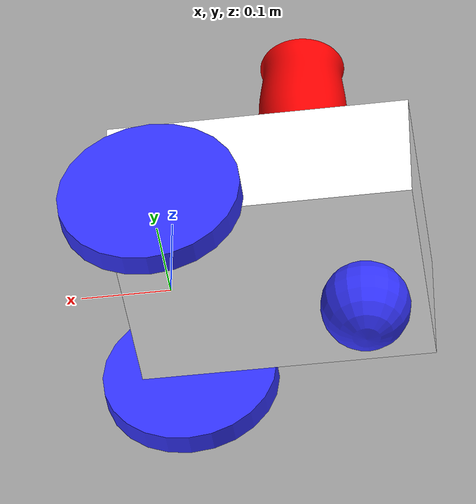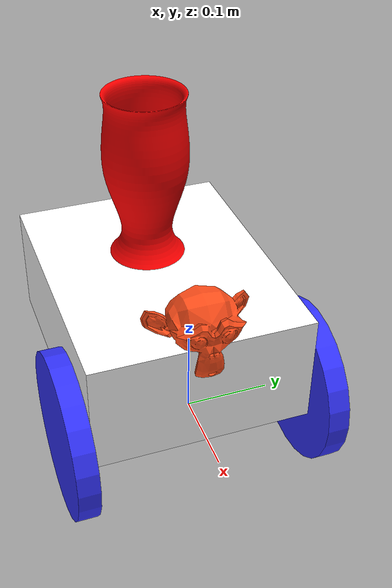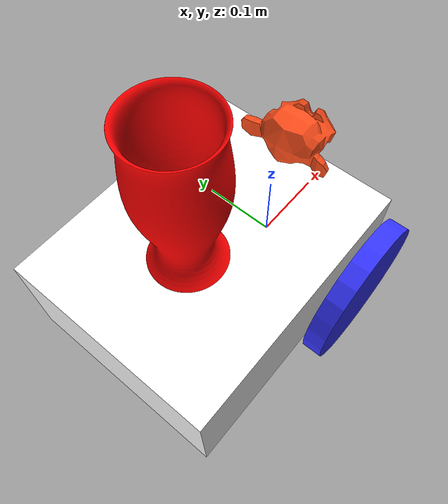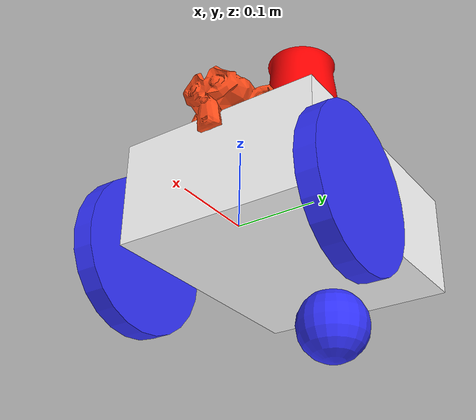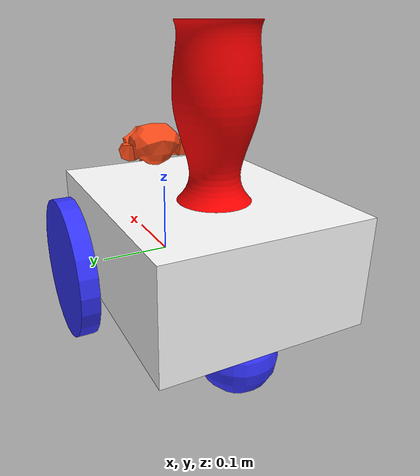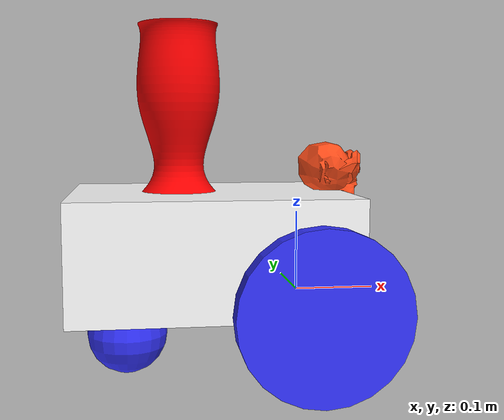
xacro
<?xml version="1.0" ?>
<robot name='robot' xmlns:xacro="http://ros.org/wiki/xacro">

    <xacro:include filename="$(find robot_description)/urdf/gazebo.urdf.xacro" />
    <!--xacro:include filename="$(find robot_description)/urdf/lidar.urdf.xacro" /-->
    <!--xacro:include filename="$(find robot_description)/urdf/depth.urdf.xacro" /-->

    <xacro:property name="chassis_length" value="0.335"/>
    <xacro:property name="chassis_width" value="0.265"/>
    <xacro:property name="chassis_height" value="0.138"/>
    <xacro:property name="wheel_radius" value="0.1"/>
    <xacro:property name="wheel_thickness" value="0.026"/>
    <xacro:property name="wheel_mass" value="0.05"/>
    <xacro:property name="wheel_offset_x" value="0.226"/>
    <xacro:property name="wheel_offset_y" value="0.1485"/>
    <xacro:property name="wheel_offset_z" value="0.01"/>
    <xacro:property name="caster_wheel_radius" value="0.05"/>
    <xacro:property name="caster_wheel_mass" value="0.01"/>
    <xacro:property name="caster_wheel_offset_x" value="0.01"/>
    <xacro:property name="caster_wheel_offset_z" value="${wheel_offset_z - wheel_radius + caster_wheel_radius}"/>
    <xacro:property name="mass" value="1.0"/>

    <material name="white">
        <color rgba="1 1 1 1" />
    </material>

    <material name="orange">
        <color rgba="1 0.3 0.1 1"/>
    </material>

    <material name="blue">
        <color rgba="0.2 0.2 1 1"/>
    </material>

    <material name="black">
        <color rgba="0 0 0 1"/>
    </material>

    <material name="red">
        <color rgba="1 0 0 1"/>
    </material>

    <link name="base_link">
    </link>

    <link name="base_footprint">
    </link>

    <joint name="base_footprint_joint" type="fixed">
        <parent link="base_link"/>
        <child link="base_footprint"/>
        <origin xyz="0 0 -0.138" rpy="0 0 0"/>
    </joint>

    <joint name="chassis_joint" type="fixed">
        <parent link="base_link"/>
        <child link="chassis"/>
        <origin xyz="${-wheel_offset_x} 0 ${-wheel_offset_z}"/>
    </joint>

    <link name='chassis'>

    <inertial>
        <origin xyz="${chassis_length/2} 0 ${chassis_height/2}" rpy="0 0 0"/>
        <mass value="${mass}" />
        <inertia ixx="${(1/12) * mass * (chassis_width*chassis_width+chassis_height*chassis_height)}" ixy="0.0" ixz="0.0"
                 iyy="${(1/12) * mass * (chassis_length*chassis_length+chassis_height*chassis_height)}" iyz="0.0"
                 izz="${(1/12) * mass * (chassis_length*chassis_length+chassis_width*chassis_width)}" />
    </inertial>
    <visual>
        <origin xyz="${chassis_length/3} 0 ${chassis_height/2}"/>
        <geometry>
            <box size="${chassis_length} ${chassis_width} ${chassis_height}"/>
        </geometry>
        <material name="white"/>
    </visual>
    <collision>
        <origin xyz="${chassis_length/2} 0 ${chassis_height/2}"/>
        <geometry>
            <box size="${chassis_length} ${chassis_width} ${chassis_height}"/>
        </geometry>
    </collision>
    </link>

    <gazebo reference="chassis">
        <material>Gazebo/Orange</material>
    </gazebo>

    <joint name="left_wheel_joint" type="continuous">
        <parent link="base_link"/>
        <child link="left_wheel"/>
        <origin xyz="0 ${wheel_offset_y} 0" rpy="-${pi/2} 0 0" />
        <axis xyz="0 0 1"/>
    </joint>

    <link name="left_wheel">
        <visual>
            <geometry>
                <cylinder radius="${wheel_radius}" length="${wheel_thickness}"/>
            </geometry>
            <material name="blue"/>
        </visual>
        <collision>
            <geometry>
                <sphere radius="${wheel_radius}"/>
            </geometry>
        </collision>
        <inertial>
            <origin xyz="0 0 0" rpy="0 0 0"/>
            <mass value="${wheel_mass}" />
            <inertia ixx="${(1/12) * wheel_mass * (3*wheel_radius*wheel_radius + wheel_thickness*wheel_thickness)}" ixy="0.0" ixz="0.0"
                     iyy="${(1/12) * wheel_mass * (3*wheel_radius*wheel_radius + wheel_thickness*wheel_thickness)}" iyz="0.0"
                     izz="${(1/2) * wheel_mass * (wheel_radius*wheel_radius)}" />
        </inertial>
    </link>

    <joint name="right_wheel_joint" type="continuous">
        <parent link="base_link"/>
        <child link="right_wheel"/>
        <origin xyz="0 ${-wheel_offset_y} 0" rpy="${pi/2} 0 0" />
        <axis xyz="0 0 -1"/>
    </joint>

    <link name="right_wheel">
        <visual>
            <geometry>
                <cylinder radius="${wheel_radius}" length="${wheel_thickness}"/>
            </geometry>
            <material name="blue"/>
        </visual>
        <collision>
            <geometry>
                <sphere radius="${wheel_radius}"/>
            </geometry>
        </collision>
        <inertial>
            <origin xyz="0 0 0" rpy="0 0 0"/>
            <mass value="${wheel_mass}" />
            <inertia ixx="${(1/12) * wheel_mass * (3*wheel_radius*wheel_radius + wheel_thickness*wheel_thickness)}" ixy="0.0" ixz="0.0"
                     iyy="${(1/12) * wheel_mass * (3*wheel_radius*wheel_radius + wheel_thickness*wheel_thickness)}" iyz="0.0"
                     izz="${(1/2) * wheel_mass * (wheel_radius*wheel_radius)}" />
        </inertial>
    </link>

    <gazebo reference="right_wheel">
        <material>Gazebo/Blue</material>
    </gazebo>

    <joint name="caster_wheel_joint" type="fixed">
        <parent link="chassis"/>
        <child link="caster_wheel"/>
        <origin xyz="${caster_wheel_offset_x} 0 ${caster_wheel_offset_z}"/>
    </joint>

    <link name="caster_wheel">
        <visual>
            <geometry>
                <sphere radius="${caster_wheel_radius}"/>
            </geometry>
            <material name="blue"/>
        </visual>
        <collision>
            <geometry>
                <sphere radius="${caster_wheel_radius}"/>
            </geometry>
        </collision>
        <inertial>
            <origin xyz="0 0 0" rpy="0 0 0"/>
            <mass value="${caster_wheel_mass}" />
            <inertia ixx="${(2/5) * caster_wheel_mass * (caster_wheel_radius*caster_wheel_radius)}" ixy="0.0" ixz="0.0"
                     iyy="${(2/5) * caster_wheel_mass * (caster_wheel_radius*caster_wheel_radius)}" iyz="0.0"
                     izz="${(2/5) * caster_wheel_mass * (caster_wheel_radius*caster_wheel_radius)}" />
        </inertial>
    </link>

    <gazebo reference="caster_wheel">
        <material>Gazebo/White</material>
        <mu1 value="0.001"/>
        <mu2 value="0.001"/>
    </gazebo>

    <link name="vasa_link">
        <visual>
            <geometry>
                <mesh filename="/home/mar/ros2_ws2/install/unique_robot/share/unique_robot/urdf/vasa.stl"/>
            </geometry>
            <material name="red"/>
        </visual>
    <!-- Остальные параметры звена, такие как инерция, масса и т.д., также могут быть указаны здесь -->
    </link>

    <joint name="base_to_vasa_joint" type="fixed">
        <parent link="base_link"/>
        <child link="vasa_link"/>
        <origin xyz="-0.15 0 ${(chassis_height+wheel_radius)/2}"/>
        <!-- Другие параметры сочленения -->
    </joint>
    <gazebo reference="vasa_link">
        <material>Gazebo/White</material>
        <mu1 value="0.001"/>
        <mu2 value="0.001"/>
    </gazebo>

    <link name="monkey_link">
        <visual>
            <geometry>
                <mesh filename="/home/mar/ros2_ws2/install/unique_robot/share/unique_robot/urdf/monkey.stl"/>
            </geometry>
            <material name="orange"/>
        </visual>
    <!-- Остальные параметры звена, такие как инерция, масса и т.д., также могут быть указаны здесь -->
    </link>

    <joint name="base_to_monkey_joint" type="fixed">
        <parent link="base_link"/>
        <child link="monkey_link"/>
        <origin xyz="0.04 0 ${0.025+(chassis_height+wheel_radius)/2}"/>
        <!-- Другие параметры сочленения -->
    </joint>
    <gazebo reference="monkey_link">
        <material>Gazebo/White</material>
        <mu1 value="0.001"/>
        <mu2 value="0.001"/>
    </gazebo>

</robot>
